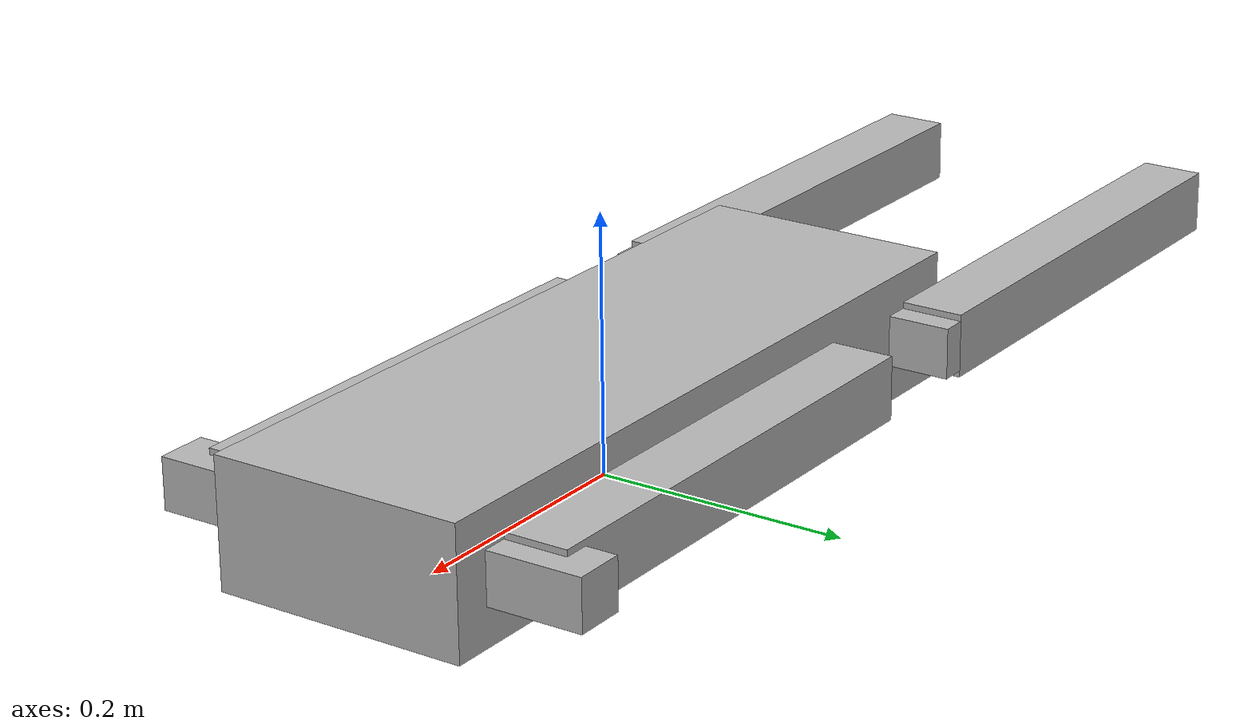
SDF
<?xml version='1.0'?>
  <sdf version='1.4'>
    <model name="spot">
    <static>false</static>
      <link name='body'>
        <pose>0 0 0.05 0 0 0</pose>

        <collision name='collision'>
          <geometry>
            <box>
              <size>.6 .2 .1</size>
            </box>
          </geometry>
        </collision>

        <visual name='visual'>
          <geometry>
            <box>
              <size>.6 .2 .1</size>
            </box>
          </geometry>
        </visual>
      </link>

      <link name="front_lleg">
        <pose>0.05 0.125 0.05 0 0 0</pose>
        <collision name="collision">
          <geometry>
            <box>
              <size>.4 .05 .05</size>
            </box>
          </geometry>
        </collision>
        <visual name="visual">
          <geometry>
            <box>
              <size>.4 .05 .05</size>
            </box>
          </geometry>
        </visual>
      </link>

      <link name="front_lleg2">
        <pose>0.05 0.125 0.05 0 0 0</pose>
        <collision name="collision">
          <geometry>
            <box>
              <size>.4 .05 .05</size>
            </box>
          </geometry>
        </collision>
        <visual name="visual">
          <geometry>
            <box>
              <size>.4 .05 .05</size>
            </box>
          </geometry>
        </visual>
      </link>

      <link name="front_rleg">
        <pose>0.05 -0.125 0.05 0 0 0</pose>
        <collision name="collision">
          <geometry>
            <box>
              <size>.4 .05 .05</size>
            </box>
          </geometry>
        </collision>
        <visual name="visual">
          <geometry>
            <box>
              <size>.4 .05 .05</size>
            </box>
          </geometry>
        </visual>
      </link>

      <link name="front_rleg2">
        <pose>0.05 -0.125 0.05 0 0 0</pose>
        <collision name="collision">
          <geometry>
            <box>
              <size>.4 .05 .05</size>
            </box>
          </geometry>
        </collision>
        <visual name="visual">
          <geometry>
            <box>
              <size>.4 .05 .05</size>
            </box>
          </geometry>
        </visual>
      </link>

      <link name="back_lleg">
        <pose>-0.45 0.125 0.05 0 0 0</pose>
        <collision name="collision">
          <geometry>
            <box>
              <size>.4 .05 .05</size>
            </box>
          </geometry>
        </collision>
        <visual name="visual">
          <geometry>
            <box>
              <size>.4 .05 .05</size>
            </box>
          </geometry>
        </visual>
      </link>

      <link name="back_lleg2">
        <pose>-0.45 0.125 0.05 0 0 0</pose>
        <collision name="collision">
          <geometry>
            <box>
              <size>.4 .05 .05</size>
            </box>
          </geometry>
        </collision>
        <visual name="visual">
          <geometry>
            <box>
              <size>.4 .05 .05</size>
            </box>
          </geometry>
        </visual>
      </link>

      <link name="back_rleg">
        <pose>-0.45 -0.125 0.05 0 0 0</pose>
        <collision name="collision">
          <geometry>
            <box>
              <size>.4 .05 .05</size>
            </box>
          </geometry>
        </collision>
        <visual name="visual">
          <geometry>
            <box>
              <size>.4 .05 .05</size>
            </box>
          </geometry>
        </visual>
      </link>

      <link name="back_rleg2">
        <pose>-0.45 -0.125 0.05 0 0 0</pose>
        <collision name="collision">
          <geometry>
            <box>
              <size>.4 .05 .05</size>
            </box>
          </geometry>
        </collision>
        <visual name="visual">
          <geometry>
            <box>
              <size>.4 .05 .05</size>
            </box>
          </geometry>
        </visual>
      </link>

      <link name="shoulder_fll">
        <pose>0.25 0.125 0.05 0 0 1.5785</pose>
        <collision name="collision">
          <geometry>
            <box>
              <size>.1 .04 .04</size>
            </box>
          </geometry>
        </collision>
        <visual name="visual">
          <geometry>
            <box>
              <size>.1 .04 .04</size>
            </box>
          </geometry>
        </visual>
      </link>

      <link name="shoulder_frl">
        <pose>0.25 -0.125 0.05 0 0 1.5785</pose>
        <collision name="collision">
          <geometry>
            <box>
              <size>.1 .04 .04</size>
            </box>
          </geometry>
        </collision>
        <visual name="visual">
          <geometry>
            <box>
              <size>.1 .04 .04</size>
            </box>
          </geometry>
        </visual>
      </link>

      <link name="shoulder_bll">
        <pose>-0.25 0.1 0.05 0 0 1.5785</pose>
        <collision name="collision">
          <geometry>
            <box>
              <size>.1 .04 .04</size>
            </box>
          </geometry>
        </collision>
        <visual name="visual">
          <geometry>
            <box>
              <size>.1 .04 .04</size>
            </box>
          </geometry>
        </visual>
      </link>

      <link name="shoulder_brl">
        <pose>-0.25 -0.1 0.05 0 0 1.5785</pose>
        <collision name="collision">
          <geometry>
            <box>
              <size>.1 .04 .04</size>
            </box>
          </geometry>
        </collision>
        <visual name="visual">
          <geometry>
            <box>
              <size>.1 .04 .04</size>
            </box>
          </geometry>
        </visual>
      </link>
      <joint type="revolute" name="shoulder_fll">
        <pose>-0.05 0 0 0 0 0</pose>
        <child>shoulder_fll</child>
        <parent>body</parent>
        <axis>
          <xyz>1 0 0</xyz>
        </axis>
      </joint>

      <joint type="revolute" name="shoulder_frl">
        <pose>0.05 0 0 0 0 0</pose>
        <child>shoulder_frl</child>
        <parent>body</parent>
        <axis>
          <xyz>1 0 0</xyz>
        </axis>
      </joint>

      <joint type="revolute" name="shoulder_bll">
        <pose>-0.05 0 0 0 0 0</pose>
        <child>shoulder_bll</child>
        <parent>body</parent>
        <axis>
          <xyz>1 0 0</xyz>
        </axis>
      </joint>

      <joint type="revolute" name="shoulder_brl">
        <pose>0.05 0 0 0 0 0</pose>
        <child>shoulder_brl</child>
        <parent>body</parent>
        <axis>
          <xyz>1 0 0</xyz>
        </axis>
      </joint>

      <joint type="revolute" name="front_lleg_joint">
        <pose>0.2 0 0 0 0 0</pose>
        <child>front_lleg</child>
        <parent>shoulder_fll</parent>
        <axis>
          <xyz>0 1 0</xyz>
        </axis>
      </joint>
      <joint type="revolute" name="front_lleg_joint2">
        <pose>-0.2 0 0 0 0 0</pose>
        <child>front_lleg2</child>
        <parent>front_lleg</parent>
        <axis>
          <xyz>0 1 0</xyz>
        </axis>
      </joint>
      <joint type="revolute" name="front_rleg_joint">
        <pose>0.2 0 0 0 0 0</pose>
        <child>front_rleg</child>
        <parent>shoulder_frl</parent>
        <axis>
          <xyz>0 1 0</xyz>
        </axis>
      </joint>
      <joint type="revolute" name="front_rleg_joint2">
        <pose>-0.2 0 0 0 0 0</pose>
        <child>front_rleg2</child>
        <parent>front_rleg</parent>
        <axis>
          <xyz>0 1 0</xyz>
        </axis>
      </joint>
      <joint type="revolute" name="back_lleg_joint">
        <pose>0.2 0 0 0 0 0</pose>
        <child>back_lleg</child>
        <parent>shoulder_bll</parent>
        <axis>
          <xyz>0 1 0</xyz>
        </axis>
      </joint>
      <joint type="revolute" name="back_lleg_joint2">
        <pose>-0.2 0 0 0 0 0</pose>
        <child>back_lleg2</child>
        <parent>back_lleg</parent>
        <axis>
          <xyz>0 1 0</xyz>
        </axis>
      </joint>
      <joint type="revolute" name="back_rleg_joint">
        <pose>0.2 0 0 0 0 0</pose>
        <child>back_rleg</child>
        <parent>shoulder_brl</parent>
        <axis>
          <xyz>0 1 0</xyz>
        </axis>
      </joint>
      <joint type="revolute" name="back_rleg_joint2">
        <pose>-0.2 0 0 0 0 0</pose>
        <child>back_rleg2</child>
        <parent>back_rleg</parent>
        <axis>
          <xyz>0 1 0</xyz>
        </axis>
      </joint>

      <plugin name="force_joint" filename="libforce_joint.so"/>

  </model>
</sdf>
